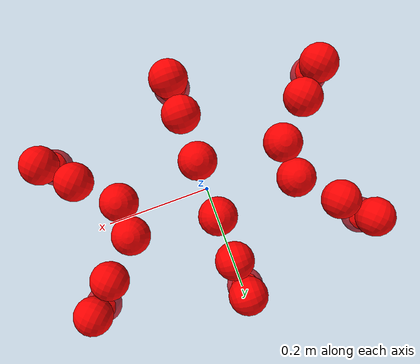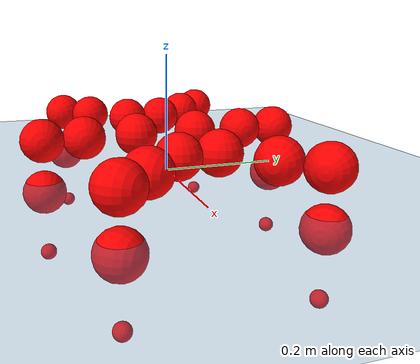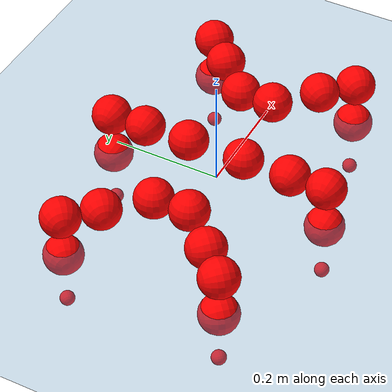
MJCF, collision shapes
<mujoco model="Golem">
  <compiler angle="radian" assetdir="assets" balanceinertia="true" inertiafromgeom="false"/>

  <option timestep="0.005" density="1.2" viscosity="2e-05"/>

  <size nkey="1"/>

  <visual>
    <quality shadowsize="8192"/>
    <map shadowclip="0.5"/>
  </visual>

  <default>
    <default class="/">
      <joint armature="0.01" damping="0.01" frictionloss="0.01"/>
      <geom contype="0" conaffinity="0" group="1" solref="-1000 -80"/>
      <site size="0.01 0.005 0.005" group="5"/>
      <general forcelimited="true" biastype="affine" gainprm="25" biasprm="0 -25 -0.5"/>
      <default class="visual">
        <geom type="mesh" group="2"/>
      </default>
      <default class="collision">
        <geom group="3"/>
      </default>
      <default class="foot">
        <geom size="0.01 0 0" condim="6" group="4" priority="1" solimp="0.015 1 0.01"/>
      </default>
      <default class="reward_collision_sphere">
        <geom group="5" rgba="1 0 0 1"/>
      </default>
    </default>
  </default>

  <asset>
    <texture type="skybox" colorspace="auto" name="//unnamed_texture_0" builtin="gradient" rgb1="0.95 0.95 0.95" rgb2="0.95 0.95 0.95" width="100" height="600"/>
    <texture type="2d" colorspace="auto" name="texplane" builtin="checker" rgb1="0.345 0.575 0.748" rgb2="0.345 0.575 0.748" markrgb="1 1 1" width="512" height="512"/>
    <material name="MatPlane" class="/" texture="texplane" texuniform="true" texrepeat="2 2" specular="0.9"/>
    <mesh name="body" class="/" file="body.stl" scale="0.001 0.001 0.001"/>
    <mesh name="coxa" class="/" file="coxa.stl" scale="0.001 0.001 0.001"/>
    <mesh name="femur" class="/" file="femur.stl" scale="0.001 0.001 0.001"/>
    <mesh name="tibia" class="/" file="tibia.stl" scale="0.001 0.001 0.001"/>
    <mesh name="tarsus" class="/" file="tarsus.stl" scale="0.001 0.001 0.001"/>
  </asset>

  <worldbody>
    <geom name="floor" class="/" size="100 100 0.125" type="plane" group="0" material="MatPlane"/>
    <light name="toplight_shadow" class="/" pos="0 0 5" dir="0.0990148 0.0990148 -0.990148" type="directional" ambient="0.04 0.04 0.04" diffuse="0.55 0.55 0.55" specular="0.12 0.12 0.12"/>
    <light name="toplight_fill" class="/" pos="0 0 5" dir="0.0990148 0.0990148 -0.990148" type="directional" castshadow="false" ambient="0.04 0.04 0.04" diffuse="0.3 0.3 0.3" specular="0.08 0.08 0.08"/>
    <body name="trunk" pos="-0.000242481 0.000353344 -0.000466689" quat="1 -0.000113101 1.95471e-05 0.000201812">
      <inertial pos="-0.000695039 -0.000258402 -0.00308459" quat="0.999994 -0.00167861 0.00285921 0.000931858" mass="2.65376" diaginertia="0.0102934 0.00105569 0.0122486"/>
      <joint name="//unnamed_joint_0" type="free"/>
      <geom name="//unnamed_geom_1" class="/" pos="0 0 0.066703" quat="1 0 0 0" type="mesh" rgba="0.9 0.9 0.9 1" mesh="body"/>
      <site name="imu" class="/" pos="0.129159 0.000928197 0.104344" size="0.00894547"/>
      <camera name="track" class="/" pos="0 -1.27367 0" quat="0.707107 0.707107 0 0" mode="trackcom"/>
      <camera name="ego_camera" class="/" pos="0.130594 0 0.104223" quat="-0.5 -0.5 0.5 0.5"/>
      <body name="coxa_RR" pos="-0.177672 -0.0533677 0.0690947" quat="0.382579 3.48046e-05 -4.51015e-05 -0.923923">
        <inertial pos="0.000130491 0.000744401 0.00105939" quat="1 0.000101625 -0.000112447 1.03781e-05" mass="0.144781" diaginertia="0.0103417 0.00106536 0.0123761"/>
        <joint name="coxa_joint_RR" class="/" pos="0 0 0" axis="-0.000120787 -0.000685864 -1" range="-3.12124 3.13701" armature="0.00909631" damping="0" frictionloss="0.00891337"/>
        <geom name="//unnamed_geom_2" class="/" type="mesh" rgba="0.2 0.2 0.2 1" mesh="coxa"/>
        <geom name="//unnamed_geom_3" class="reward_collision_sphere" size="0.0357819" pos="-0.0301371 0 0"/>
        <body name="femur_RR" pos="0.0593234 0.00126368 -0.00134547" quat="0.499969 -0.500062 0.500349 0.499619">
          <inertial pos="0.000472463 -0.000121377 0.000839651" quat="1 -0.000363853 -0.000202387 0.000250081" mass="0.143161" diaginertia="0.0102884 0.00105539 0.0122605"/>
          <joint name="femur_joint_RR" class="/" pos="0 0 0" axis="4.85365e-05 -0.000316165 -1" range="-3.14056 3.14216" armature="0.00896101" damping="0.000236783" frictionloss="0.00878281"/>
          <geom name="//unnamed_geom_4" class="/" type="mesh" rgba="0.9 0.9 0.9 1" mesh="femur"/>
          <geom name="//unnamed_geom_5" class="reward_collision_sphere" size="0.0357819"/>
          <body name="tibia_RR" pos="0.00141682 -0.0683146 0.000385931" quat="4.28839e-05 1 -4.3426e-05 6.62615e-05">
            <inertial pos="0.000285145 2.96929e-05 -0.000337372" quat="0.999999 0.000635617 -0.000974545 -0.000182155" mass="0.143008" diaginertia="0.0101699 0.00104612 0.0123687"/>
            <joint name="tibia_joint_RR" class="/" pos="0 0 0" axis="-0.00233332 0.00326329 0.999992" range="-3.15673 3.12916" armature="0.00881552" damping="0.00156349" frictionloss="0.00896801"/>
            <geom name="//unnamed_geom_6" class="/" type="mesh" rgba="0.2 0.2 0.2 1" mesh="tibia"/>
            <geom name="//unnamed_geom_7" class="reward_collision_sphere" size="0.0357819"/>
            <body name="tarsus_RR" pos="0.0858913 -0.00027506 -0.000332848" quat="1 -0.000128793 -0.000341126 -0.000219">
              <inertial pos="0.0600496 0.00035411 0.000776359" quat="0.500912 0.499587 0.500105 0.499395" mass="0.141128" diaginertia="0.0101615 0.0010348 0.0122551"/>
              <joint name="tarsus_joint_RR" class="/" pos="0 0 0" axis="0.000733993 -0.00255989 0.999996" range="-3.12169 3.13197" armature="0.00880249" damping="0.00762106" frictionloss="0.00862837"/>
              <geom name="//unnamed_geom_8" class="/" type="mesh" rgba="0.9 0.9 0.9 1" mesh="tarsus"/>
              <geom name="foot_1" class="foot" size="0.00853856" pos="0.112512 0 0" quat="0 -0.707107 0 0.707107"/>
              <geom name="//unnamed_geom_10" class="reward_collision_sphere" size="0.0357819"/>
              <geom name="//unnamed_geom_11" class="reward_collision_sphere" size="0.0134182" pos="0.107991 0 0"/>
              <site name="foot_1" class="foot" pos="0.112512 0 0" quat="0 -0.707107 0 0.707107" size="0.00894547"/>
            </body>
          </body>
        </body>
      </body>
      <body name="coxa_RM" pos="-0.000960033 -0.0836918 0.0680405" quat="0.707316 -9.88658e-05 0.000132026 -0.706898">
        <inertial pos="-0.000647188 0.000279012 0.000777781" quat="1 3.85117e-05 -0.000264441 7.02302e-05" mass="0.142395" diaginertia="0.0101889 0.00103912 0.0123389"/>
        <joint name="coxa_joint_RM" class="/" pos="0 0 0" axis="-8.6058e-05 5.06871e-05 -1" range="-3.14444 3.13959" armature="0.00858103" damping="0.00874554" frictionloss="0.00894906"/>
        <geom name="//unnamed_geom_12" class="/" type="mesh" rgba="0.2 0.2 0.2 1" mesh="coxa"/>
        <geom name="//unnamed_geom_13" class="reward_collision_sphere" size="0.0357819" pos="-0.0301371 0 0"/>
        <body name="femur_RM" pos="0.0586795 -0.00044424 -0.000287562" quat="0.500206 -0.499834 0.499951 0.500009">
          <inertial pos="0.000147031 0.000654029 0.000171724" quat="1 -0.000568269 0.000251847 0.000264056" mass="0.143429" diaginertia="0.0102794 0.00104826 0.0122999"/>
          <joint name="femur_joint_RM" class="/" pos="0 0 0" axis="-0.00230998 -0.00413373 -0.999989" range="-3.13641 3.14101" armature="0.00911732" damping="0.00264629" frictionloss="0.00925971"/>
          <geom name="//unnamed_geom_14" class="/" type="mesh" rgba="0.9 0.9 0.9 1" mesh="femur"/>
          <geom name="//unnamed_geom_15" class="reward_collision_sphere" size="0.0357819"/>
          <body name="tibia_RM" pos="0.000700308 -0.0679904 -0.000477436" quat="0.000350226 1 -0.00015782 -3.66686e-05">
            <inertial pos="0.00101258 -0.000627848 -0.000340059" quat="0.999992 -0.00383558 0.000407218 -0.00132264" mass="0.145327" diaginertia="0.0103228 0.00105717 0.0124515"/>
            <joint name="tibia_joint_RM" class="/" pos="0 0 0" axis="0.000467109 0.00030304 1" range="-3.14107 3.1213" armature="0.0088069" damping="0.00637285" frictionloss="0.00899545"/>
            <geom name="//unnamed_geom_16" class="/" type="mesh" rgba="0.2 0.2 0.2 1" mesh="tibia"/>
            <geom name="//unnamed_geom_17" class="reward_collision_sphere" size="0.0357819"/>
            <body name="tarsus_RM" pos="0.0872213 0.0009758 0.000584339" quat="1 1.99894e-05 -6.36525e-06 1.66093e-07">
              <inertial pos="0.0599171 -0.000154668 0.000488597" quat="0.499853 0.499793 0.500005 0.500349" mass="0.144384" diaginertia="0.0102334 0.00105627 0.0123988"/>
              <joint name="tarsus_joint_RM" class="/" pos="0 0 0" axis="0.000468162 -0.00185043 0.999998" range="-3.12419 3.15013" armature="0.0089825" damping="0.00543874" frictionloss="0.00928204"/>
              <geom name="//unnamed_geom_18" class="/" type="mesh" rgba="0.9 0.9 0.9 1" mesh="tarsus"/>
              <geom name="foot_2" class="foot" size="0.00868196" pos="0.112512 0 0" quat="0 -0.707107 0 0.707107"/>
              <geom name="//unnamed_geom_20" class="reward_collision_sphere" size="0.0357819"/>
              <geom name="//unnamed_geom_21" class="reward_collision_sphere" size="0.0134182" pos="0.107991 0 0"/>
              <site name="foot_2" class="foot" pos="0.112512 0 0" quat="0 -0.707107 0 0.707107" size="0.00894547"/>
            </body>
          </body>
        </body>
      </body>
      <body name="coxa_RF" pos="0.178735 -0.0525524 0.0666911" quat="0.923884 -1.42165e-05 9.31942e-06 -0.382672">
        <inertial pos="-0.00022857 -5.74773e-05 -0.00058027" quat="1 0.000200957 0.000142083 0.000506137" mass="0.145865" diaginertia="0.0103479 0.00105917 0.0124171"/>
        <joint name="coxa_joint_RF" class="/" pos="0 0 0" axis="-0.000191206 -0.00634806 -0.99998" stiffness="0.00125863" range="-3.13704 3.12615" armature="0.00918172" damping="0.00355431" frictionloss="0.00889762"/>
        <geom name="//unnamed_geom_22" class="/" type="mesh" rgba="0.2 0.2 0.2 1" mesh="coxa"/>
        <geom name="//unnamed_geom_23" class="reward_collision_sphere" size="0.0357819" pos="-0.0301371 0 0"/>
        <body name="femur_RF" pos="0.0596171 0.000689929 -0.000182779" quat="0.499999 -0.500023 0.50004 0.499938">
          <inertial pos="0.00100586 -0.000244653 -0.000158621" quat="0.999998 -0.000721259 0.00156019 -0.000554433" mass="0.143962" diaginertia="0.0103291 0.0010535 0.0123019"/>
          <joint name="femur_joint_RF" class="/" pos="0 0 0" axis="-0.000551237 0.00053986 -1" range="-3.13282 3.14891" armature="0.00896101" damping="0.00850346" frictionloss="0.00918008"/>
          <geom name="//unnamed_geom_24" class="/" type="mesh" rgba="0.9 0.9 0.9 1" mesh="femur"/>
          <geom name="//unnamed_geom_25" class="reward_collision_sphere" size="0.0357819"/>
          <body name="tibia_RF" pos="-0.000282695 -0.0685974 -0.000403992" quat="-4.00652e-06 1 -8.831e-05 8.01061e-05">
            <inertial pos="1.83598e-05 0.00011828 -0.000429159" quat="0.999998 -0.000577781 0.00127672 0.00158212" mass="0.142148" diaginertia="0.0101301 0.00104559 0.0121425"/>
            <joint name="tibia_joint_RF" class="/" pos="0 0 0" axis="0.000299068 -0.000211064 1" range="-3.1396 3.12403" armature="0.00905468" damping="0.00674626" frictionloss="0.00860886"/>
            <geom name="//unnamed_geom_26" class="/" type="mesh" rgba="0.2 0.2 0.2 1" mesh="tibia"/>
            <geom name="//unnamed_geom_27" class="reward_collision_sphere" size="0.0357819"/>
            <body name="tarsus_RF" pos="0.0874502 -0.00029118 0.00109621" quat="1 0.000291613 -9.81974e-05 -0.000228403">
              <inertial pos="0.0601839 0.000535248 0.000368655" quat="0.499896 0.499971 0.500212 0.499921" mass="0.141863" diaginertia="0.0100837 0.00103978 0.0121235"/>
              <joint name="tarsus_joint_RF" class="/" pos="0 0 0" axis="0.00227692 -0.00217349 0.999995" stiffness="0.0241243" range="-3.15436 3.13902" armature="0.0091608" damping="0" frictionloss="0.00911249"/>
              <geom name="//unnamed_geom_28" class="/" type="mesh" rgba="0.9 0.9 0.9 1" mesh="tarsus"/>
              <geom name="foot_3" class="foot" size="0.00893704" pos="0.112512 0 0" quat="0 -0.707107 0 0.707107"/>
              <geom name="//unnamed_geom_30" class="reward_collision_sphere" size="0.0357819"/>
              <geom name="//unnamed_geom_31" class="reward_collision_sphere" size="0.0134182" pos="0.107991 0 0"/>
              <site name="foot_3" class="foot" pos="0.112512 0 0" quat="0 -0.707107 0 0.707107" size="0.00894547"/>
            </body>
          </body>
        </body>
      </body>
      <body name="coxa_LR" pos="-0.178854 0.0560872 0.068376" quat="0.382619 2.14832e-05 -2.69131e-05 0.923906">
        <inertial pos="0.000984212 0.000400409 0.000209009" quat="0.999993 -0.00250887 0.00293188 0.000234476" mass="0.145195" diaginertia="0.010408 0.00106918 0.0123473"/>
        <joint name="coxa_joint_LR" class="/" pos="0 0 0" axis="-3.47469e-05 0.000115973 -1" range="-3.12398 3.12973" armature="0.00884442" damping="0.00947796" frictionloss="0.00883011"/>
        <geom name="//unnamed_geom_32" class="/" type="mesh" rgba="0.2 0.2 0.2 1" mesh="coxa"/>
        <geom name="//unnamed_geom_33" class="reward_collision_sphere" size="0.0357819" pos="-0.0301371 0 0"/>
        <body name="femur_LR" pos="0.0602017 -0.00146837 -0.00127239" quat="0.499997 -0.499999 0.5 0.500004">
          <inertial pos="-0.000282636 -0.000947914 3.77512e-05" quat="1 -8.99951e-05 3.01907e-05 -0.000265102" mass="0.142868" diaginertia="0.0102134 0.00103657 0.012244"/>
          <joint name="femur_joint_LR" class="/" pos="0 0 0" axis="0.000628735 0.000813236 0.999999" range="-3.14492 3.139" armature="0.00900288" damping="0" frictionloss="0.00893713"/>
          <geom name="//unnamed_geom_34" class="/" type="mesh" rgba="0.9 0.9 0.9 1" mesh="femur"/>
          <geom name="//unnamed_geom_35" class="reward_collision_sphere" size="0.0357819"/>
          <body name="tibia_LR" pos="0.000448479 -0.0689454 -0.00253016" quat="-1.18271e-05 1 -0.000155167 -0.000266308">
            <inertial pos="-0.000966746 0.000803571 0.000490783" quat="0.999998 0.00174746 -0.000738418 0.000879865" mass="0.144109" diaginertia="0.0103752 0.00106443 0.0123723"/>
            <joint name="tibia_joint_LR" class="/" pos="0 0 0" axis="-0.000399868 -0.000182506 -1" range="-3.15362 3.13549" armature="0.00906136" damping="0.0061063" frictionloss="0.0089696"/>
            <geom name="//unnamed_geom_36" class="/" type="mesh" rgba="0.2 0.2 0.2 1" mesh="tibia"/>
            <geom name="//unnamed_geom_37" class="reward_collision_sphere" size="0.0357819"/>
            <body name="tarsus_LR" pos="0.0885918 0.000187885 0.000913099" quat="1 -0.000276188 0.000244127 0.00029909">
              <inertial pos="0.0605966 0.00023241 0.000334509" quat="0.499939 0.500623 0.499273 0.500165" mass="0.143167" diaginertia="0.0102047 0.00105636 0.0123446"/>
              <joint name="tarsus_joint_LR" class="/" pos="0 0 0" axis="-0.000898512 -0.00206847 -0.999997" range="-3.13148 3.15482" armature="0.00931393" damping="4.90755e-05" frictionloss="0.00930982"/>
              <geom name="//unnamed_geom_38" class="/" type="mesh" rgba="0.9 0.9 0.9 1" mesh="tarsus"/>
              <geom name="foot_4" class="foot" size="0.00907535" pos="0.112512 0 0" quat="0.707107 0 -0.707107 0"/>
              <geom name="//unnamed_geom_40" class="reward_collision_sphere" size="0.0357819"/>
              <geom name="//unnamed_geom_41" class="reward_collision_sphere" size="0.0134182" pos="0.107991 0 0"/>
              <site name="foot_4" class="foot" pos="0.112512 0 0" quat="0.707107 0 -0.707107 0" size="0.00894547"/>
            </body>
          </body>
        </body>
      </body>
      <body name="coxa_LM" pos="-0.00163881 0.0828396 0.0675156" quat="0.706981 -7.78454e-05 0.000108512 0.707233">
        <inertial pos="-0.000111758 0.000813147 0.000414607" quat="0.999998 0.00175966 -0.000728915 0.000333134" mass="0.144985" diaginertia="0.0103123 0.0010533 0.0123504"/>
        <joint name="coxa_joint_LM" class="/" pos="0 0 0" axis="0.00436637 -0.000711267 -0.99999" range="-3.1383 3.14836" armature="0.00908782" damping="0.00734733" frictionloss="0.00857249"/>
        <geom name="//unnamed_geom_42" class="/" type="mesh" rgba="0.2 0.2 0.2 1" mesh="coxa"/>
        <geom name="//unnamed_geom_43" class="reward_collision_sphere" size="0.0357819" pos="-0.0301371 0 0"/>
        <body name="femur_LM" pos="0.0557588 0.0008448 -0.000882636" quat="0.499997 -0.499998 0.499995 0.500009">
          <inertial pos="-0.000951042 -0.000351862 -0.000332916" quat="0.999992 0.00355023 -0.000603526 0.00148001" mass="0.141278" diaginertia="0.0101577 0.00104004 0.0121362"/>
          <joint name="femur_joint_LM" class="/" pos="0 0 0" axis="0.00267791 -0.0020248 0.999994" range="-3.13208 3.13386" armature="0.00882015" damping="0.00168081" frictionloss="0.00933058"/>
          <geom name="//unnamed_geom_44" class="/" type="mesh" rgba="0.9 0.9 0.9 1" mesh="femur"/>
          <geom name="//unnamed_geom_45" class="reward_collision_sphere" size="0.0357819"/>
          <body name="tibia_LM" pos="-1.1034e-05 -0.0670125 0.00164117" quat="9.49517e-05 1 -0.00011482 6.38494e-05">
            <inertial pos="-0.00095451 -7.2553e-05 0.000402454" quat="0.999999 0.00118764 0.000412444 -3.06703e-05" mass="0.143275" diaginertia="0.0102224 0.00104969 0.0122035"/>
            <joint name="tibia_joint_LM" class="/" pos="0 0 0" axis="-0.000802588 -0.00237887 -0.999997" range="-3.13743 3.13949" armature="0.00900253" damping="0.00235155" frictionloss="0.00924046"/>
            <geom name="//unnamed_geom_46" class="/" type="mesh" rgba="0.2 0.2 0.2 1" mesh="tibia"/>
            <geom name="//unnamed_geom_47" class="reward_collision_sphere" size="0.0357819"/>
            <body name="tarsus_LM" pos="0.0882531 -0.000335608 -0.00120687" quat="1 8.44063e-06 -0.000201182 2.7876e-05">
              <inertial pos="0.0612617 -0.000857017 -0.000840025" quat="0.500616 0.500005 0.500206 0.499171" mass="0.142822" diaginertia="0.0103236 0.00105089 0.0123291"/>
              <joint name="tarsus_joint_LM" class="/" pos="0 0 0" axis="-0.000367833 0.000419042 -1" range="-3.1421 3.14357" armature="0.00907009" damping="0.00503469" frictionloss="0.00882287"/>
              <geom name="//unnamed_geom_48" class="/" type="mesh" rgba="0.9 0.9 0.9 1" mesh="tarsus"/>
              <geom name="foot_5" class="foot" size="0.00909279" pos="0.112512 0 0" quat="0.707107 0 -0.707107 0"/>
              <geom name="//unnamed_geom_50" class="reward_collision_sphere" size="0.0357819"/>
              <geom name="//unnamed_geom_51" class="reward_collision_sphere" size="0.0134182" pos="0.107991 0 0"/>
              <site name="foot_5" class="foot" pos="0.112512 0 0" quat="0.707107 0 -0.707107 0" size="0.00894547"/>
            </body>
          </body>
        </body>
      </body>
      <body name="coxa_LF" pos="0.178792 0.0534803 0.0672852" quat="0.923826 -6.94583e-06 0.00026615 0.382813">
        <inertial pos="-4.11091e-05 0.000280575 -0.000340508" quat="0.999992 -0.00235036 0.00136221 -0.00293333" mass="0.144964" diaginertia="0.0102776 0.00104741 0.0124545"/>
        <joint name="coxa_joint_LF" class="/" pos="0 0 0" axis="-0.00117187 0.00026971 -0.999999" stiffness="0.00172869" range="-3.14387 3.13782" armature="0.00924338" damping="0.00166446" frictionloss="0.00922717"/>
        <geom name="//unnamed_geom_52" class="/" type="mesh" rgba="0.2 0.2 0.2 1" mesh="coxa"/>
        <geom name="//unnamed_geom_53" class="reward_collision_sphere" size="0.0357819" pos="-0.0301371 0 0"/>
        <body name="femur_LF" pos="0.0599727 -0.000474842 -0.000364947" quat="0.500029 -0.500006 0.499974 0.499992">
          <inertial pos="-0.00050792 -0.000509705 0.000625494" quat="0.999999 0.000643417 -0.00100373 -0.000898904" mass="0.143752" diaginertia="0.0101886 0.00104452 0.0122535"/>
          <joint name="femur_joint_LF" class="/" pos="0 0 0" axis="0.00302075 0.00196399 0.999994" range="-3.14176 3.14367" armature="0.00855629" damping="0.00403317" frictionloss="0.00915879"/>
          <geom name="//unnamed_geom_54" class="/" type="mesh" rgba="0.9 0.9 0.9 1" mesh="femur"/>
          <geom name="//unnamed_geom_55" class="reward_collision_sphere" size="0.0357819"/>
          <body name="tibia_LF" pos="0.000261835 -0.0697851 0.000190457" quat="0.000488674 1 6.15067e-05 -0.000144277">
            <inertial pos="0.000187968 -0.000603147 -9.99005e-05" quat="1 5.21888e-05 0.000260445 -0.000115934" mass="0.141675" diaginertia="0.0101021 0.00103964 0.012214"/>
            <joint name="tibia_joint_LF" class="/" pos="0 0 0" axis="0.000165323 0.00075371 -1" range="-3.14308 3.13762" armature="0.00851887" damping="0.000863705" frictionloss="0.00900994"/>
            <geom name="//unnamed_geom_56" class="/" type="mesh" rgba="0.2 0.2 0.2 1" mesh="tibia"/>
            <geom name="//unnamed_geom_57" class="reward_collision_sphere" size="0.0357819"/>
            <body name="tarsus_LF" pos="0.0890013 0.000295032 0.000136181" quat="1 -9.82612e-05 3.94515e-05 3.91499e-06">
              <inertial pos="0.0606014 -0.000576908 -0.000264632" quat="0.496947 0.501583 0.502405 0.499047" mass="0.143621" diaginertia="0.0101573 0.00104965 0.0121732"/>
              <joint name="tarsus_joint_LF" class="/" pos="0 0 0" axis="0.000454312 0.0023092 -0.999997" range="-3.13024 3.13574" armature="0.00859285" damping="0.0135344" frictionloss="0.00878948"/>
              <geom name="//unnamed_geom_58" class="/" type="mesh" rgba="0.9 0.9 0.9 1" mesh="tarsus"/>
              <geom name="foot_6" class="foot" size="0.00893308" pos="0.112512 0 0" quat="0.707107 0 -0.707107 0"/>
              <geom name="//unnamed_geom_60" class="reward_collision_sphere" size="0.0357819"/>
              <geom name="//unnamed_geom_61" class="reward_collision_sphere" size="0.0134182" pos="0.107991 0 0"/>
              <site name="foot_6" class="foot" pos="0.112512 0 0" quat="0.707107 0 -0.707107 0" size="0.00894547"/>
            </body>
          </body>
        </body>
      </body>
    </body>
  </worldbody>

  <contact>
    <pair class="/" geom1="floor" geom2="foot_1" name="//unnamed_contact_0"/>
    <pair class="/" geom1="floor" geom2="foot_2" name="//unnamed_contact_1"/>
    <pair class="/" geom1="floor" geom2="foot_3" name="//unnamed_contact_2"/>
    <pair class="/" geom1="floor" geom2="foot_4" name="//unnamed_contact_3"/>
    <pair class="/" geom1="floor" geom2="foot_5" name="//unnamed_contact_4"/>
    <pair class="/" geom1="floor" geom2="foot_6" name="//unnamed_contact_5"/>
  </contact>

  <actuator>
    <general name="coxa_joint_RR" class="/" joint="coxa_joint_RR" forcerange="-6.51437 6.51437" gainprm="21.2049" biasprm="0 -21.2049 -0.469166"/>
    <general name="femur_joint_RR" class="/" joint="femur_joint_RR" forcerange="-6.58899 6.58899" gainprm="21.2049" biasprm="0 -21.2049 -0.469166"/>
    <general name="tibia_joint_RR" class="/" joint="tibia_joint_RR" forcerange="-6.44287 6.44287" gainprm="21.2049" biasprm="0 -21.2049 -0.469166"/>
    <general name="tarsus_joint_RR" class="/" joint="tarsus_joint_RR" forcerange="-6.44288 6.44288" gainprm="21.2049" biasprm="0 -21.2049 -0.469166"/>
    <general name="coxa_joint_RM" class="/" joint="coxa_joint_RM" forcerange="-6.48469 6.48469" gainprm="21.2049" biasprm="0 -21.2049 -0.469166"/>
    <general name="femur_joint_RM" class="/" joint="femur_joint_RM" forcerange="-6.5286 6.5286" gainprm="21.2049" biasprm="0 -21.2049 -0.469166"/>
    <general name="tibia_joint_RM" class="/" joint="tibia_joint_RM" forcerange="-6.51773 6.51773" gainprm="21.2049" biasprm="0 -21.2049 -0.469166"/>
    <general name="tarsus_joint_RM" class="/" joint="tarsus_joint_RM" forcerange="-6.57924 6.57924" gainprm="21.2049" biasprm="0 -21.2049 -0.469166"/>
    <general name="coxa_joint_RF" class="/" joint="coxa_joint_RF" forcerange="-6.35945 6.35945" gainprm="21.2049" biasprm="0 -21.2049 -0.469166"/>
    <general name="femur_joint_RF" class="/" joint="femur_joint_RF" forcerange="-6.53433 6.53433" gainprm="21.2049" biasprm="0 -21.2049 -0.469166"/>
    <general name="tibia_joint_RF" class="/" joint="tibia_joint_RF" forcerange="-6.32105 6.32105" gainprm="21.2049" biasprm="0 -21.2049 -0.469166"/>
    <general name="tarsus_joint_RF" class="/" joint="tarsus_joint_RF" forcerange="-6.74098 6.74098" gainprm="21.2049" biasprm="0 -21.2049 -0.469166"/>
    <general name="coxa_joint_LR" class="/" joint="coxa_joint_LR" forcerange="-6.73046 6.73046" gainprm="21.2049" biasprm="0 -21.2049 -0.469166"/>
    <general name="femur_joint_LR" class="/" joint="femur_joint_LR" forcerange="-6.5242 6.5242" gainprm="21.2049" biasprm="0 -21.2049 -0.469166"/>
    <general name="tibia_joint_LR" class="/" joint="tibia_joint_LR" forcerange="-6.529 6.529" gainprm="21.2049" biasprm="0 -21.2049 -0.469166"/>
    <general name="tarsus_joint_LR" class="/" joint="tarsus_joint_LR" forcerange="-6.73381 6.73381" gainprm="21.2049" biasprm="0 -21.2049 -0.469166"/>
    <general name="coxa_joint_LM" class="/" joint="coxa_joint_LM" forcerange="-6.44919 6.44919" gainprm="21.2049" biasprm="0 -21.2049 -0.469166"/>
    <general name="femur_joint_LM" class="/" joint="femur_joint_LM" forcerange="-6.74257 6.74257" gainprm="21.2049" biasprm="0 -21.2049 -0.469166"/>
    <general name="tibia_joint_LM" class="/" joint="tibia_joint_LM" forcerange="-6.54699 6.54699" gainprm="21.2049" biasprm="0 -21.2049 -0.469166"/>
    <general name="tarsus_joint_LM" class="/" joint="tarsus_joint_LM" forcerange="-6.42457 6.42457" gainprm="21.2049" biasprm="0 -21.2049 -0.469166"/>
    <general name="coxa_joint_LF" class="/" joint="coxa_joint_LF" forcerange="-6.63206 6.63206" gainprm="21.2049" biasprm="0 -21.2049 -0.469166"/>
    <general name="femur_joint_LF" class="/" joint="femur_joint_LF" forcerange="-6.73063 6.73063" gainprm="21.2049" biasprm="0 -21.2049 -0.469166"/>
    <general name="tibia_joint_LF" class="/" joint="tibia_joint_LF" forcerange="-6.33326 6.33326" gainprm="21.2049" biasprm="0 -21.2049 -0.469166"/>
    <general name="tarsus_joint_LF" class="/" joint="tarsus_joint_LF" forcerange="-6.51257 6.51257" gainprm="21.2049" biasprm="0 -21.2049 -0.469166"/>
  </actuator>

  <sensor>
    <gyro site="imu" name="imu_angular_velocity"/>
    <velocimeter site="imu" name="imu_linear_velocity"/>
    <framelinvel objtype="site" objname="foot_1" name="foot_1_global_linear_velocity"/>
    <framelinvel objtype="site" objname="foot_2" name="foot_2_global_linear_velocity"/>
    <framelinvel objtype="site" objname="foot_3" name="foot_3_global_linear_velocity"/>
    <framelinvel objtype="site" objname="foot_4" name="foot_4_global_linear_velocity"/>
    <framelinvel objtype="site" objname="foot_5" name="foot_5_global_linear_velocity"/>
    <framelinvel objtype="site" objname="foot_6" name="foot_6_global_linear_velocity"/>
  </sensor>

  <keyframe>
    <key name="home" qpos="0 0 0.1457 1 0 0 0 0 0 0 0 0 0 0 0 0 0 0 0 0 0 0 0 0 0 0 0 0 0 0 0"/>
  </keyframe>
</mujoco>
